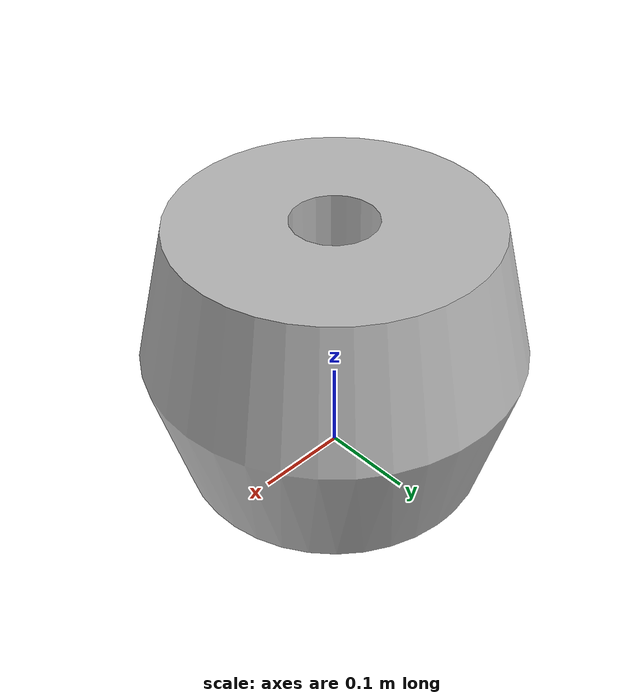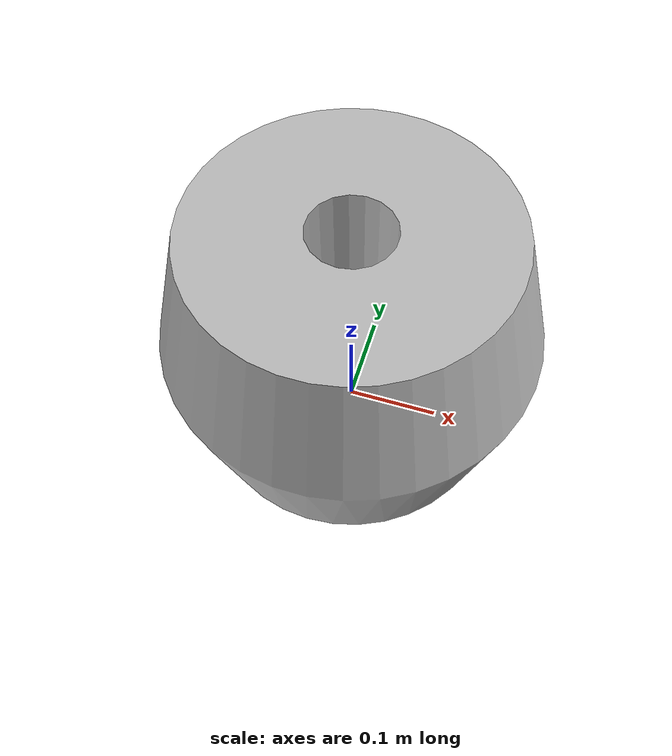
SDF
<sdf version='1.6'>
  <model name='wideCone'>
    <link name='wideCone'>
      <pose frame=''>0 0 0 0 -0 0</pose>
      <inertial>
        <pose frame=''>-0 0 0.145 0 -0 0</pose>
        <mass>0.01</mass>
        <inertia>
          <ixx>0</ixx>
          <ixy>0</ixy>
          <ixz>0</ixz>
          <iyy>0</iyy>
          <iyz>0</iyz>
          <izz>0</izz>
        </inertia>
      </inertial>
      <collision name='wideCone_collision'>
        <pose frame=''>0 0 0 1.5708 -0 0</pose>
        <geometry>
          <mesh>
            <scale>1 1 1</scale>
            <uri>model://wideCone/meshes/wideCone.STL</uri>
          </mesh>
        </geometry>
	<surface>
	  <contact>
	    <ode>
	      <max_vel>0.0005</max_vel>
	      <min_depth>0.001</min_depth>
	    </ode>
	  </contact>
	</surface>
      </collision>
      <visual name='wideCone_visual'>
        <pose frame=''>0 0 0 1.5708 -0 0</pose>
        <geometry>
          <mesh>
            <scale>1 1 1</scale>
            <uri>model://wideCone/meshes/wideCone.STL</uri>
          </mesh>
        </geometry>
      </visual>
    </link>
  </model>
</sdf>
